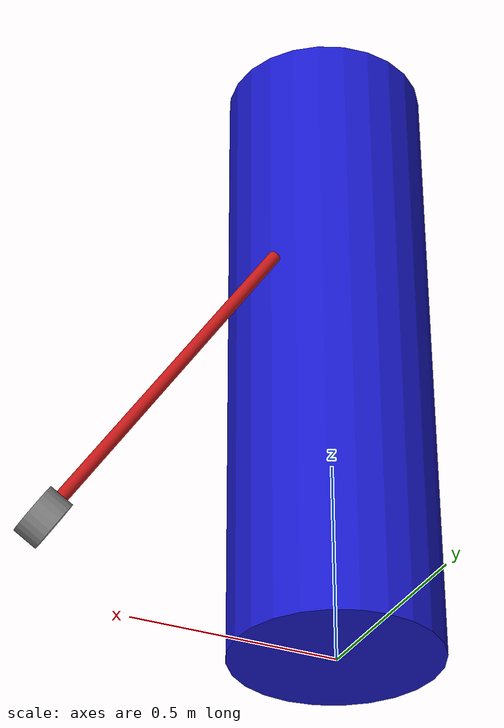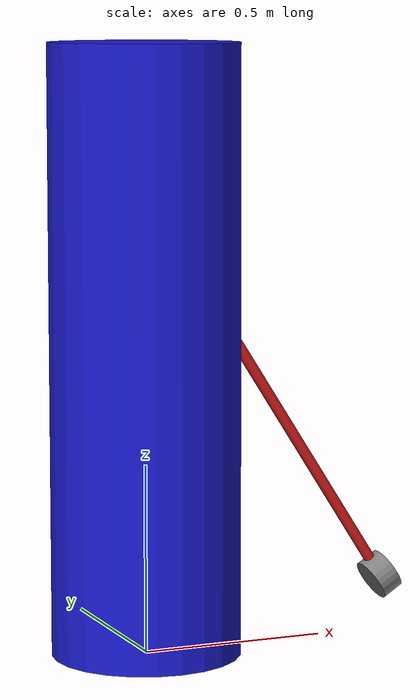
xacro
<?xml version="1.0"?>
<robot xmlns:xacro="http://www.ros.org/wiki/xacro" name="smartnav">

  <xacro:macro name="cylinder_inertia" params="m r h">
    <inertial>
      <mass value="${m}"/>
      <inertia ixx="${m*(3*r*r+h*h)/12}" ixy="0" ixz="0"
               iyy="${m*(3*r*r+h*h)/12}" iyz="0"
               izz="${m*r*r/2}"/>
    </inertial>
  </xacro:macro>

  <material name="blue">
    <color rgba="0.1 0.1 0.8 1.0"/>
  </material>
  <material name="gray">
    <color rgba="0.5 0.5 0.5 1.0"/>
  </material>
  <material name="red">
    <color rgba="0.8 0.1 0.1 1.0"/>
  </material>

  <link name="base_link">
    <visual>
      <geometry>
        <cylinder radius="0.25" length="1.6"/>
      </geometry>
      <origin xyz="0 0 0.8" rpy="0 0 0"/>
      <material name="blue"/>
    </visual>
    <collision>
      <geometry>
        <cylinder radius="0.25" length="1.6"/>
      </geometry>
      <origin xyz="0 0 0.8" rpy="0 0 0"/>
    </collision>
    <xacro:cylinder_inertia m="65.0" r="0.25" h="1.6"/>
  </link>

  <link name="cane_link">
    <visual>
      <geometry>
        <cylinder radius="0.015" length="1.0"/>
      </geometry>
      <origin xyz="0.5 0 0" rpy="0 1.5708 0"/>
      <material name="red"/>
    </visual>
    <collision>
      <geometry>
        <cylinder radius="0.015" length="1.0"/>
      </geometry>
      <origin xyz="0.5 0 0" rpy="0 1.5708 0"/>
    </collision>
    <xacro:cylinder_inertia m="0.5" r="0.015" h="1.0"/>
  </link>

  <joint name="cane_joint" type="fixed">
    <parent link="base_link"/>
    <child link="cane_link"/>
    <origin xyz="0.22 0.15 0.95" rpy="0 1.0 0"/>
  </joint>

  <link name="laser_link">
    <visual>
      <geometry>
        <cylinder radius="0.06" length="0.06"/>
      </geometry>
      <origin xyz="0 0 0" rpy="0 0 0"/>
      <material name="gray"/>
    </visual>
    <collision>
      <geometry>
        <cylinder radius="0.06" length="0.06"/>
      </geometry>
      <origin xyz="0 0 0" rpy="0 0 0"/>
    </collision>
    <inertial>
      <mass value="0.1"/>
      <inertia ixx="0.0001" ixy="0" ixz="0" iyy="0.0001" iyz="0" izz="0.0001"/>
    </inertial>
  </link>

  <joint name="laser_joint" type="fixed">
    <parent link="cane_link"/>
    <child link="laser_link"/>
    <origin xyz="1.0 0 0" rpy="0 0 0"/>
  </joint>

  <gazebo reference="laser_link">
    <sensor type="gpu_lidar" name="laser_sensor">
      <pose>0 0 0 0 0 0</pose>
      <visualize>true</visualize>
      <update_rate>20.0</update_rate>
      <ray>
        <scan>
          <horizontal>
            <samples>360</samples>
            <resolution>1</resolution>
            <min_angle>-3.14159</min_angle>
            <max_angle>3.14159</max_angle>
          </horizontal>
        </scan>
        <range>
          <min>0.1</min>
          <max>10.0</max>
          <resolution>0.01</resolution>
        </range>
      </ray>
        <ros2>
          <namespace>/</namespace>
          <topic_name>scan</topic_name>
        </ros2>
    </sensor>
  </gazebo>

  <gazebo reference="base_link">
    <visual>
      <geometry>
        <cylinder radius="0.25" length="1.6"/>
      </geometry>
      <origin xyz="0 0 0.8" rpy="0 0 0"/>
      <material>
        <ambient>0.1 0.1 0.8 1.0</ambient>
        <diffuse>0.1 0.1 0.8 1.0</diffuse>
      </material>
    </visual>
  </gazebo>

  <!-- Holonomic-style motion: apply cmd_vel to base_link (plugin ships with gz-sim8 on Jazzy) -->
  <gazebo>
    <plugin filename="gz-sim-velocity-control-system"
            name="gz::sim::systems::VelocityControl">
      <topic>cmd_vel</topic>
      <link_name>base_link</link_name>
    </plugin>
  </gazebo>

  <gazebo reference="cane_link">
    <visual>
      <geometry>
        <cylinder radius="0.015" length="1.0"/>
      </geometry>
      <origin xyz="0.5 0 0" rpy="0 1.5708 0"/>
      <material>
        <ambient>0.8 0.1 0.1 1.0</ambient>
        <diffuse>0.8 0.1 0.1 1.0</diffuse>
      </material>
    </visual>
  </gazebo>

  <gazebo reference="laser_link">
    <visual>
      <geometry>
        <cylinder radius="0.06" length="0.06"/>
      </geometry>
      <origin xyz="0 0 0" rpy="0 0 0"/>
      <material>
        <ambient>0.5 0.5 0.5 1.0</ambient>
        <diffuse>0.5 0.5 0.5 1.0</diffuse>
      </material>
    </visual>
  </gazebo>

</robot>
